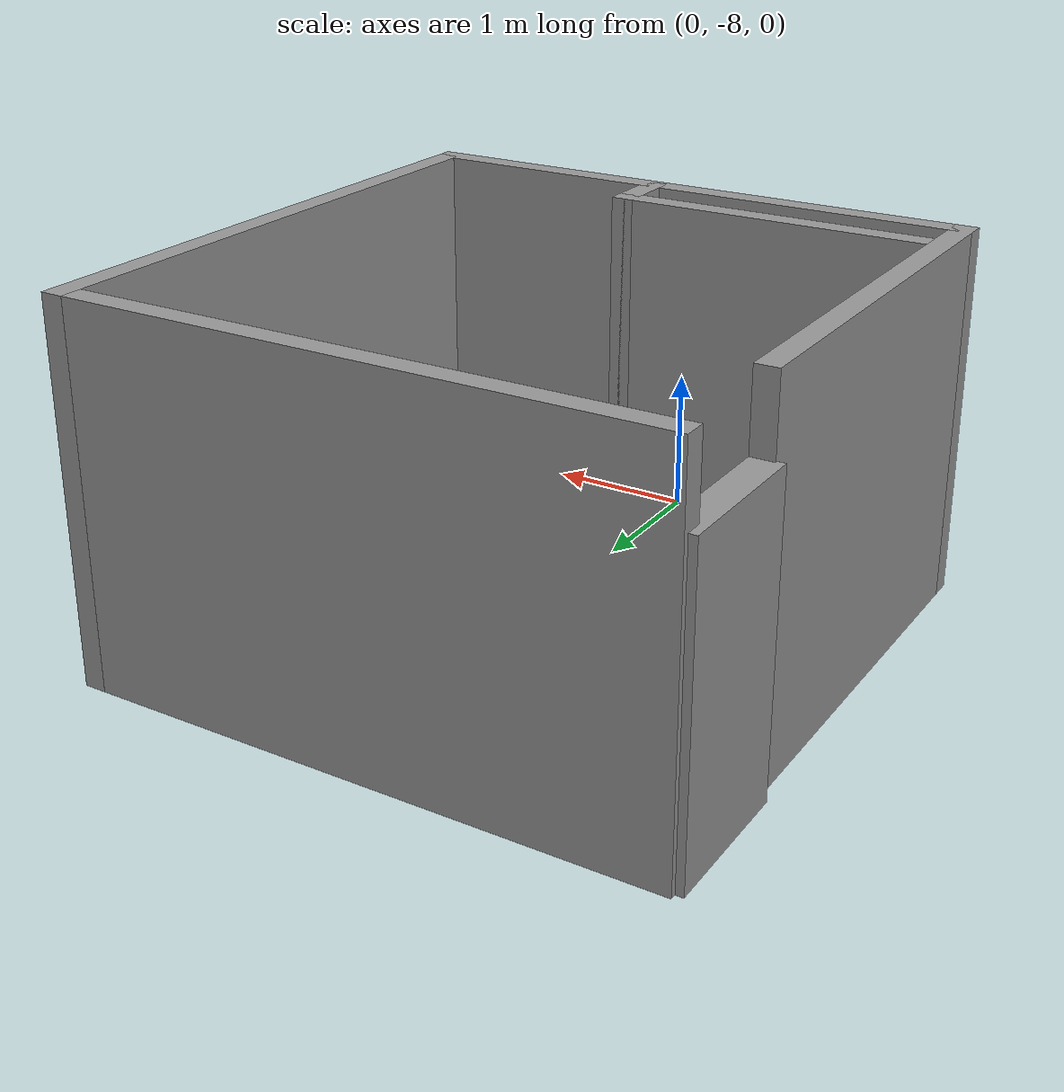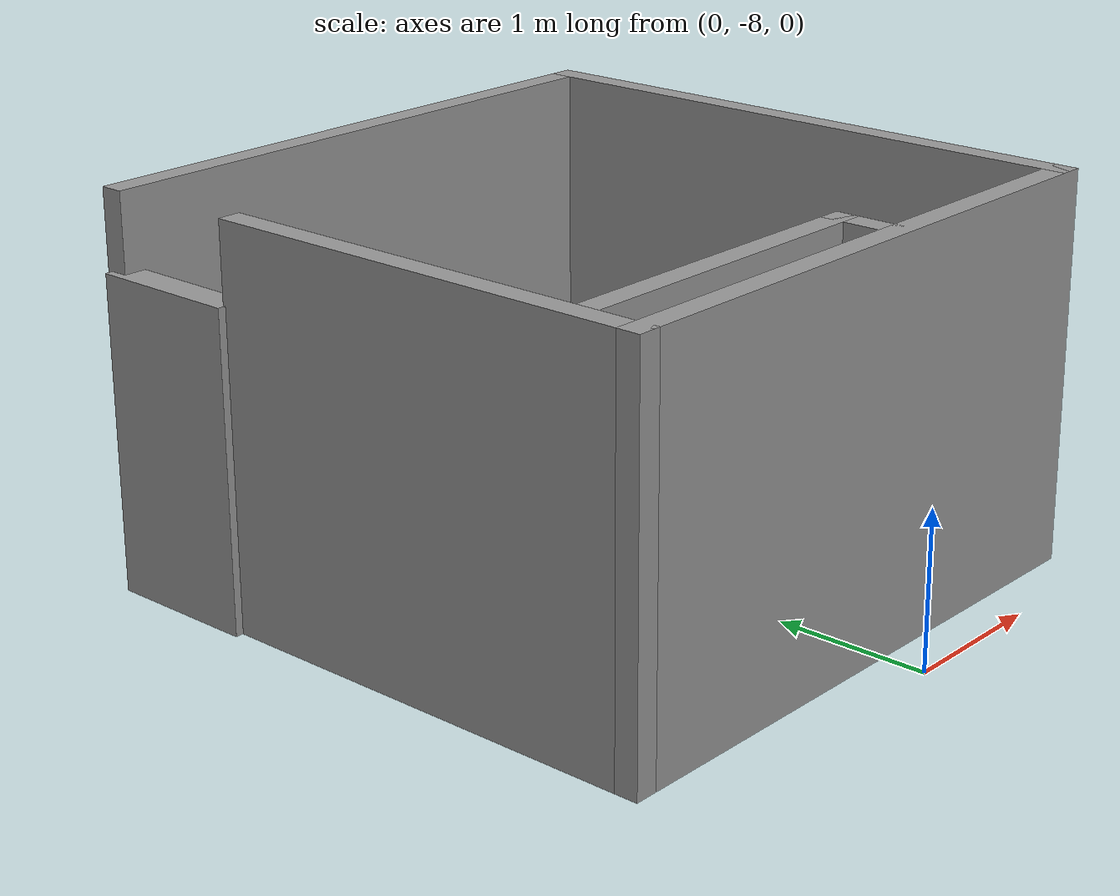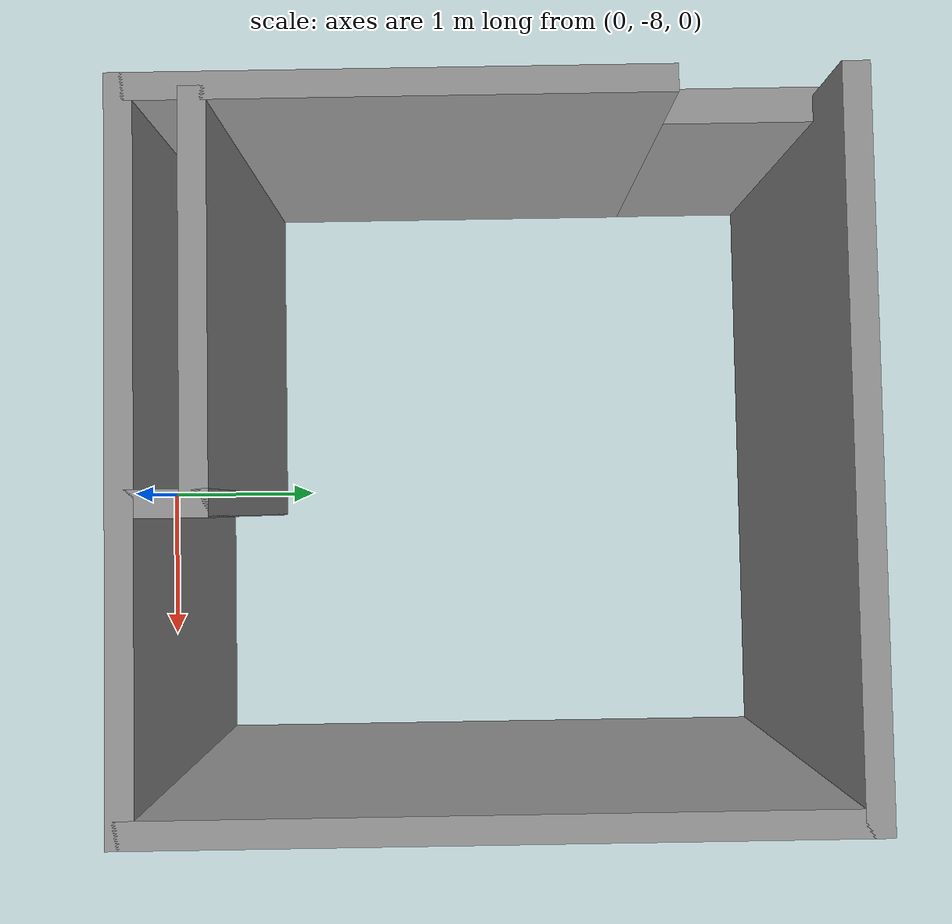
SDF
<?xml version='1.0'?>
<sdf version='1.6'>
  <model name='room-2'>
    <pose frame=''>-0.169599 -5.71979 0 0 -0 0</pose>
    <link name='Door_0'>
      <collision name='Door_0_Collision'>
        <geometry>
          <box>
            <size>0.980454 0.2 2</size>
          </box>
        </geometry>
        <pose frame=''>0 0 1 0 -0 0</pose>
      </collision>
      <visual name='Door_0_Visual'>
        <pose frame=''>0 0 1 0 -0 0</pose>
        <geometry>
          <box>
            <size>0.980454 0.2 2</size>
          </box>
        </geometry>
        <material>
          <script>
            <uri>file://media/materials/scripts/gazebo.material</uri>
            <name>Gazebo/Grey</name>
          </script>
        </material>
      </visual>
      <pose frame=''>-1.95196 1.47178 0 0 0 -1.57077</pose>
    </link>
    <link name='Wall_0'>
      <collision name='Wall_0_Collision'>
        <geometry>
          <box>
            <size>4 0.15 2.5</size>
          </box>
        </geometry>
        <pose frame=''>0 0 1.25 0 -0 0</pose>
      </collision>
      <visual name='Wall_0_Visual'>
        <pose frame=''>0 0 1.25 0 -0 0</pose>
        <geometry>
          <box>
            <size>4 0.15 2.5</size>
          </box>
        </geometry>
        <material>
          <script>
            <uri>file://media/materials/scripts/gazebo.material</uri>
            <name>Gazebo/Grey</name>
          </script>
          <ambient>1 1 1 1</ambient>
        </material>
      </visual>
      <pose frame=''>0 1.925 0 0 -0 0</pose>
    </link>
    <link name='Wall_1'>
      <collision name='Wall_1_Collision'>
        <geometry>
          <box>
            <size>4 0.15 2.5</size>
          </box>
        </geometry>
        <pose frame=''>0 0 1.25 0 -0 0</pose>
      </collision>
      <visual name='Wall_1_Visual'>
        <pose frame=''>0 0 1.25 0 -0 0</pose>
        <geometry>
          <box>
            <size>4 0.15 2.5</size>
          </box>
        </geometry>
        <material>
          <script>
            <uri>file://media/materials/scripts/gazebo.material</uri>
            <name>Gazebo/Grey</name>
          </script>
          <ambient>1 1 1 1</ambient>
        </material>
      </visual>
      <pose frame=''>1.925 0 0 0 0 -1.5708</pose>
    </link>
    <link name='Wall_2'>
      <collision name='Wall_2_Collision'>
        <geometry>
          <box>
            <size>4 0.15 2.5</size>
          </box>
        </geometry>
        <pose frame=''>0 0 1.25 0 -0 0</pose>
      </collision>
      <visual name='Wall_2_Visual'>
        <pose frame=''>0 0 1.25 0 -0 0</pose>
        <geometry>
          <box>
            <size>4 0.15 2.5</size>
          </box>
        </geometry>
        <material>
          <script>
            <uri>file://media/materials/scripts/gazebo.material</uri>
            <name>Gazebo/Grey</name>
          </script>
          <ambient>1 1 1 1</ambient>
        </material>
      </visual>
      <pose frame=''>0 -1.925 0 0 -0 3.14159</pose>
    </link>
    <link name='Wall_3'>
      <collision name='Wall_3_Collision'>
        <geometry>
          <box>
            <size>3 0.15 2.5</size>
          </box>
        </geometry>
        <pose frame=''>0 0 1.25 0 -0 0</pose>
      </collision>
      <visual name='Wall_3_Visual'>
        <pose frame=''>0 0 1.25 0 -0 0</pose>
        <geometry>
          <box>
            <size>3 0.15 2.5</size>
          </box>
        </geometry>
        <material>
          <script>
            <uri>file://media/materials/scripts/gazebo.material</uri>
            <name>Gazebo/Grey</name>
          </script>
          <ambient>1 1 1 1</ambient>
        </material>
      </visual>
      <pose frame=''>-1.925 -0.5 0 0 -0 1.5708</pose>
    </link>
    <link name='Wall_6'>
      <collision name='Wall_6_Collision'>
        <geometry>
          <box>
            <size>2.25 0.15 2.5</size>
          </box>
        </geometry>
        <pose frame=''>0 0 1.25 0 -0 0</pose>
      </collision>
      <visual name='Wall_6_Visual'>
        <pose frame=''>0 0 1.25 0 -0 0</pose>
        <geometry>
          <box>
            <size>2.25 0.15 2.5</size>
          </box>
        </geometry>
        <material>
          <script>
            <uri>file://media/materials/scripts/gazebo.material</uri>
            <name>Gazebo/Grey</name>
          </script>
          <ambient>1 1 1 1</ambient>
        </material>
      </visual>
      <pose frame=''>-0.800813 -1.54143 0 0 -0 0</pose>
    </link>
    <link name='Wall_7'>
      <collision name='Wall_7_Collision'>
        <geometry>
          <box>
            <size>0.5 0.15 2.5</size>
          </box>
        </geometry>
        <pose frame=''>0 0 1.25 0 -0 0</pose>
      </collision>
      <visual name='Wall_7_Visual'>
        <pose frame=''>0 0 1.25 0 -0 0</pose>
        <geometry>
          <box>
            <size>0.5 0.15 2.5</size>
          </box>
        </geometry>
        <material>
          <script>
            <uri>file://media/materials/scripts/gazebo.material</uri>
            <name>Gazebo/Grey</name>
          </script>
          <ambient>1 1 1 1</ambient>
        </material>
      </visual>
      <pose frame=''>0.249187 -1.71643 0 0 0 -1.5708</pose>
    </link>
    <static>1</static>
  </model>
</sdf>
